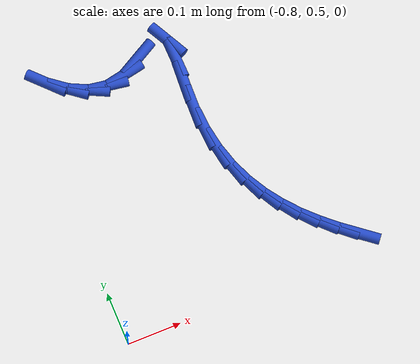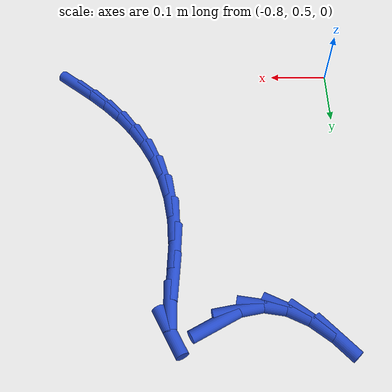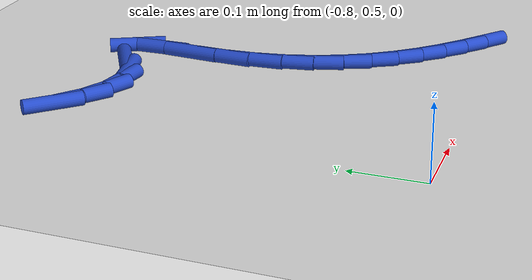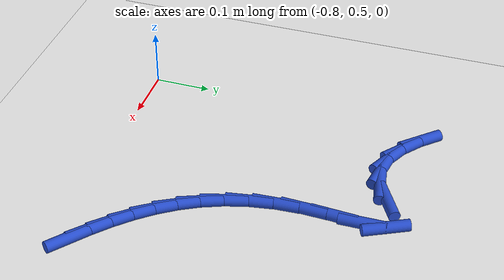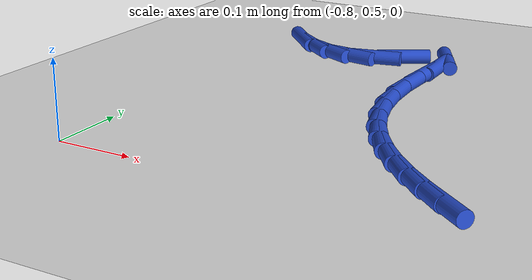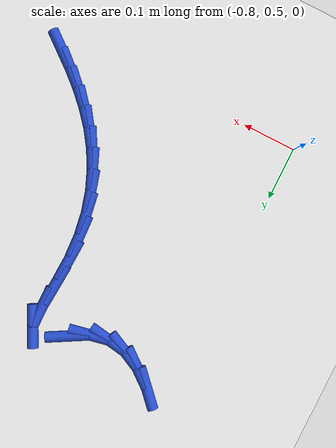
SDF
<sdf version="1.6">
 <world name="default">
  <model name="ground_plane">
   <static>1</static>
   <link name="link">
    <collision name="collision">
     <geometry><plane><normal>0 0 1</normal><size>100 100</size></plane></geometry>
     <surface><friction><ode><mu>100</mu><mu2>50</mu2></ode></friction></surface>
    </collision>
    <visual name="visual">
     <cast_shadows>0</cast_shadows>
     <geometry><plane><normal>0 0 1</normal><size>100 100</size></plane></geometry>
     <material>
      <script><uri>file://media/materials/scripts/gazebo.material</uri><name>Gazebo/WhiteGlow</name></script>
     </material>
    </visual>
   </link>
  </model>
  <model name="line">
   <link name="link_19">
    <pose>-0.34358638497912225 0.5303449475946596 0.01 0 1.57 -0.6779856712423643</pose>
    <collision name="collision">
     <geometry><cylinder><radius>0.01</radius><length>0.08</length></cylinder></geometry>
    </collision>
    <visual name="visual">
     <material>
      <script><name>Gazebo/Blue</name><uri>file://media/materials/scripts/gazebo.material</uri></script>
     </material>
     <geometry><cylinder><radius>0.01</radius><length>0.08</length></cylinder></geometry>
    </visual>
   </link>
   <link name="link_20">
    <pose>-0.37263301590629183 0.553737222601344 0.01 0 1.57 -0.730661235544265</pose>
    <collision name="collision">
     <geometry><cylinder><radius>0.01</radius><length>0.08</length></cylinder></geometry>
    </collision>
    <visual name="visual">
     <material>
      <script><name>Gazebo/Blue</name><uri>file://media/materials/scripts/gazebo.material</uri></script>
     </material>
     <geometry><cylinder><radius>0.01</radius><length>0.08</length></cylinder></geometry>
    </visual>
   </link>
   <link name="link_21">
    <pose>-0.40030924423257064 0.578538140959819 0.01 0 1.57 -0.7967286291104057</pose>
    <collision name="collision">
     <geometry><cylinder><radius>0.01</radius><length>0.08</length></cylinder></geometry>
    </collision>
    <visual name="visual">
     <material>
      <script><name>Gazebo/Blue</name><uri>file://media/materials/scripts/gazebo.material</uri></script>
     </material>
     <geometry><cylinder><radius>0.01</radius><length>0.08</length></cylinder></geometry>
    </visual>
   </link>
   <link name="link_22">
    <pose>-0.426224425978739 0.6050473407840163 0.01 0 1.57 -0.8760740891448919</pose>
    <collision name="collision">
     <geometry><cylinder><radius>0.01</radius><length>0.08</length></cylinder></geometry>
    </collision>
    <visual name="visual">
     <material>
      <script><name>Gazebo/Blue</name><uri>file://media/materials/scripts/gazebo.material</uri></script>
     </material>
     <geometry><cylinder><radius>0.01</radius><length>0.08</length></cylinder></geometry>
    </visual>
   </link>
   <link name="link_23">
    <pose>-0.44998791716557723 0.6335644601878669 0.01 0 1.57 -0.9678662053726462</pose>
    <collision name="collision">
     <geometry><cylinder><radius>0.01</radius><length>0.08</length></cylinder></geometry>
    </collision>
    <visual name="visual">
     <material>
      <script><name>Gazebo/Blue</name><uri>file://media/materials/scripts/gazebo.material</uri></script>
     </material>
     <geometry><cylinder><radius>0.01</radius><length>0.08</length></cylinder></geometry>
    </visual>
   </link>
   <link name="link_24">
    <pose>-0.4712090738138658 0.6643891372853026 0.01 0 1.57 -1.0702375708480145</pose>
    <collision name="collision">
     <geometry><cylinder><radius>0.01</radius><length>0.08</length></cylinder></geometry>
    </collision>
    <visual name="visual">
     <material>
      <script><name>Gazebo/Blue</name><uri>file://media/materials/scripts/gazebo.material</uri></script>
     </material>
     <geometry><cylinder><radius>0.01</radius><length>0.08</length></cylinder></geometry>
    </visual>
   </link>
   <link name="link_25">
    <pose>-0.48949725194438476 0.6978210101902544 0.01 0 1.57 -1.1801526081879898</pose>
    <collision name="collision">
     <geometry><cylinder><radius>0.01</radius><length>0.08</length></cylinder></geometry>
    </collision>
    <visual name="visual">
     <material>
      <script><name>Gazebo/Blue</name><uri>file://media/materials/scripts/gazebo.material</uri></script>
     </material>
     <geometry><cylinder><radius>0.01</radius><length>0.08</length></cylinder></geometry>
    </visual>
   </link>
   <link name="link_26">
    <pose>-0.5044618075779144 0.7341597170166541 0.01 0 1.57 -1.2936270201252125</pose>
    <collision name="collision">
     <geometry><cylinder><radius>0.01</radius><length>0.08</length></cylinder></geometry>
    </collision>
    <visual name="visual">
     <material>
      <script><name>Gazebo/Blue</name><uri>file://media/materials/scripts/gazebo.material</uri></script>
     </material>
     <geometry><cylinder><radius>0.01</radius><length>0.08</length></cylinder></geometry>
    </visual>
   </link>
   <link name="link_27">
    <pose>-0.5157120967352352 0.7737048958784327 0.01 0 1.57 -1.40632203127292</pose>
    <collision name="collision">
     <geometry><cylinder><radius>0.01</radius><length>0.08</length></cylinder></geometry>
    </collision>
    <visual name="visual">
     <material>
      <script><name>Gazebo/Blue</name><uri>file://media/materials/scripts/gazebo.material</uri></script>
     </material>
     <geometry><cylinder><radius>0.01</radius><length>0.08</length></cylinder></geometry>
    </visual>
   </link>
   <link name="link_28">
    <pose>-0.5228574754371271 0.8167561848895213 0.01 0 1.57 -1.5143052407777957</pose>
    <collision name="collision">
     <geometry><cylinder><radius>0.01</radius><length>0.08</length></cylinder></geometry>
    </collision>
    <visual name="visual">
     <material>
      <script><name>Gazebo/Blue</name><uri>file://media/materials/scripts/gazebo.material</uri></script>
     </material>
     <geometry><cylinder><radius>0.01</radius><length>0.08</length></cylinder></geometry>
    </visual>
   </link>
   <link name="link_29">
    <pose>-0.5255072997043708 0.8636132221638523 0.01 0 1.57 1.5336267240267973</pose>
    <collision name="collision">
     <geometry><cylinder><radius>0.01</radius><length>0.08</length></cylinder></geometry>
    </collision>
    <visual name="visual">
     <material>
      <script><name>Gazebo/Blue</name><uri>file://media/materials/scripts/gazebo.material</uri></script>
     </material>
     <geometry><cylinder><radius>0.01</radius><length>0.08</length></cylinder></geometry>
    </visual>
   </link>
   <link name="link_30">
    <pose>-0.5236342044104434 0.9139832144451312 0.01 0 1.57 1.5058906544428745</pose>
    <collision name="collision">
     <geometry><cylinder><radius>0.01</radius><length>0.08</length></cylinder></geometry>
    </collision>
    <visual name="visual">
     <material>
      <script><name>Gazebo/Blue</name><uri>file://media/materials/scripts/gazebo.material</uri></script>
     </material>
     <geometry><cylinder><radius>0.01</radius><length>0.08</length></cylinder></geometry>
    </visual>
   </link>
   <link name="link_31">
    <pose>-0.5204996056959212 0.9622100582321327 0.01 0 1.57 -1.5544566644169127</pose>
    <collision name="collision">
     <geometry><cylinder><radius>0.01</radius><length>0.08</length></cylinder></geometry>
    </collision>
    <visual name="visual">
     <material>
      <script><name>Gazebo/Blue</name><uri>file://media/materials/scripts/gazebo.material</uri></script>
     </material>
     <geometry><cylinder><radius>0.01</radius><length>0.08</length></cylinder></geometry>
    </visual>
   </link>
   <link name="link_32">
    <pose>-0.5211136362772006 0.9997858612408371 0.01 0 1.57 -1.098756208059924</pose>
    <collision name="collision">
     <geometry><cylinder><radius>0.01</radius><length>0.08</length></cylinder></geometry>
    </collision>
    <visual name="visual">
     <material>
      <script><name>Gazebo/Blue</name><uri>file://media/materials/scripts/gazebo.material</uri></script>
     </material>
     <geometry><cylinder><radius>0.01</radius><length>0.08</length></cylinder></geometry>
    </visual>
   </link>
   <link name="link_35">
    <pose>-0.585101726474419 0.9879668393762887 0.01 0 1.57 0.5172918394940162</pose>
    <collision name="collision">
     <geometry><cylinder><radius>0.01</radius><length>0.08</length></cylinder></geometry>
    </collision>
    <visual name="visual">
     <material>
      <script><name>Gazebo/Blue</name><uri>file://media/materials/scripts/gazebo.material</uri></script>
     </material>
     <geometry><cylinder><radius>0.01</radius><length>0.08</length></cylinder></geometry>
    </visual>
   </link>
   <link name="link_36">
    <pose>-0.6208938036519871 0.9676021704015383 0.01 0 1.57 0.19968713856347467</pose>
    <collision name="collision">
     <geometry><cylinder><radius>0.01</radius><length>0.08</length></cylinder></geometry>
    </collision>
    <visual name="visual">
     <material>
      <script><name>Gazebo/Blue</name><uri>file://media/materials/scripts/gazebo.material</uri></script>
     </material>
     <geometry><cylinder><radius>0.01</radius><length>0.08</length></cylinder></geometry>
    </visual>
   </link>
   <link name="link_37">
    <pose>-0.6561391204100299 0.9604690702731081 0.01 0 1.57 -0.15527746993978175</pose>
    <collision name="collision">
     <geometry><cylinder><radius>0.01</radius><length>0.08</length></cylinder></geometry>
    </collision>
    <visual name="visual">
     <material>
      <script><name>Gazebo/Blue</name><uri>file://media/materials/scripts/gazebo.material</uri></script>
     </material>
     <geometry><cylinder><radius>0.01</radius><length>0.08</length></cylinder></geometry>
    </visual>
   </link>
   <link name="link_38">
    <pose>-0.6904382300921198 0.9658381703910786 0.01 0 1.57 -0.4527787735282066</pose>
    <collision name="collision">
     <geometry><cylinder><radius>0.01</radius><length>0.08</length></cylinder></geometry>
    </collision>
    <visual name="visual">
     <material>
      <script><name>Gazebo/Blue</name><uri>file://media/materials/scripts/gazebo.material</uri></script>
     </material>
     <geometry><cylinder><radius>0.01</radius><length>0.08</length></cylinder></geometry>
    </visual>
   </link>
   <link name="link_39">
    <pose>-0.7236996712509711 0.9820194244460648 0.01 0 1.57 -0.6670563724619244</pose>
    <collision name="collision">
     <geometry><cylinder><radius>0.01</radius><length>0.08</length></cylinder></geometry>
    </collision>
    <visual name="visual">
     <material>
      <script><name>Gazebo/Blue</name><uri>file://media/materials/scripts/gazebo.material</uri></script>
     </material>
     <geometry><cylinder><radius>0.01</radius><length>0.08</length></cylinder></geometry>
    </visual>
   </link>
   <link name="link_40">
    <pose>-0.7558319824392966 1.0073227861286804 0.01 0 1.57 -0.8140436657945415</pose>
    <collision name="collision">
     <geometry><cylinder><radius>0.01</radius><length>0.08</length></cylinder></geometry>
    </collision>
    <visual name="visual">
     <material>
      <script><name>Gazebo/Blue</name><uri>file://media/materials/scripts/gazebo.material</uri></script>
     </material>
     <geometry><cylinder><radius>0.01</radius><length>0.08</length></cylinder></geometry>
    </visual>
   </link>
  </model>
 </world>
</sdf>
